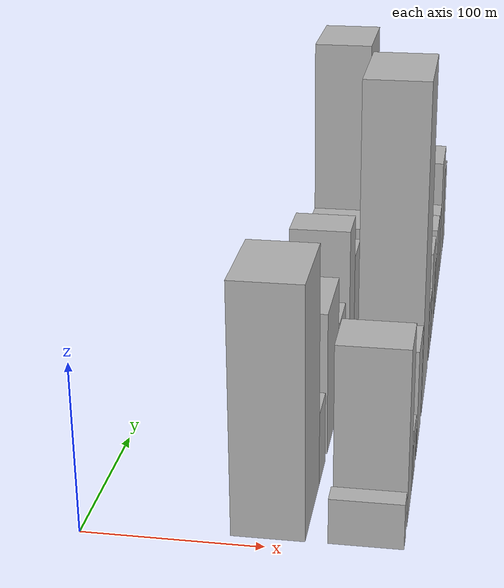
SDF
<sdf version="1.6">
 <world name="default">
  <model name="building_12">
   <static>1</static>
   <pose>100.0000 35.7936 0 0.000000 0.000000 0.000000</pose>
   <link name="link">
    <pose>0 0 73.50 0 0 0</pose>
    <collision name="collision"><geometry><box><size>40.0000 56.1301 147.0000</size></box></geometry></collision>
    <visual name="visual">
     <cast_shadows>0</cast_shadows>
     <geometry><box><size>40.0000 56.1301 147.0000</size></box></geometry>
     <material>
      <script>
       <uri>model://HANNAS_wall/materials/scripts</uri>
       <uri>model://HANNAS_wall/materials/textures</uri>
       <name>vrc/HANNAS_wall</name>
      </script>
     </material>
    </visual>
   </link>
  </model>
  <model name="building_13">
   <static>1</static>
   <pose>100.0000 76.7831 0 0.000000 0.000000 0.000000</pose>
   <link name="link">
    <pose>0 0 22.50 0 0 0</pose>
    <collision name="collision"><geometry><box><size>40.0000 25.8488 45.0000</size></box></geometry></collision>
    <visual name="visual">
     <cast_shadows>0</cast_shadows>
     <geometry><box><size>40.0000 25.8488 45.0000</size></box></geometry>
     <material>
      <script>
       <uri>model://HANNAS_wall/materials/scripts</uri>
       <uri>model://HANNAS_wall/materials/textures</uri>
       <name>vrc/HANNAS_wall</name>
      </script>
     </material>
    </visual>
   </link>
  </model>
  <model name="building_14">
   <static>1</static>
   <pose>100.0000 125.6240 0 0.000000 0.000000 0.000000</pose>
   <link name="link">
    <pose>0 0 45.00 0 0 0</pose>
    <collision name="collision"><geometry><box><size>40.0000 53.8330 90.0000</size></box></geometry></collision>
    <visual name="visual">
     <cast_shadows>0</cast_shadows>
     <geometry><box><size>40.0000 53.8330 90.0000</size></box></geometry>
     <material>
      <script>
       <uri>model://HANNAS_wall/materials/scripts</uri>
       <uri>model://HANNAS_wall/materials/textures</uri>
       <name>vrc/HANNAS_wall</name>
      </script>
     </material>
    </visual>
   </link>
  </model>
  <model name="building_15">
   <static>1</static>
   <pose>100.0000 174.1164 0 0.000000 0.000000 0.000000</pose>
   <link name="link">
    <pose>0 0 28.50 0 0 0</pose>
    <collision name="collision"><geometry><box><size>40.0000 31.1519 57.0000</size></box></geometry></collision>
    <visual name="visual">
     <cast_shadows>0</cast_shadows>
     <geometry><box><size>40.0000 31.1519 57.0000</size></box></geometry>
     <material>
      <script>
       <uri>model://HANNAS_wall/materials/scripts</uri>
       <uri>model://HANNAS_wall/materials/textures</uri>
       <name>vrc/HANNAS_wall</name>
      </script>
     </material>
    </visual>
   </link>
  </model>
  <model name="building_16">
   <static>1</static>
   <pose>100.0000 199.3992 0 0.000000 0.000000 0.000000</pose>
   <link name="link">
    <pose>0 0 16.50 0 0 0</pose>
    <collision name="collision"><geometry><box><size>40.0000 19.4137 33.0000</size></box></geometry></collision>
    <visual name="visual">
     <cast_shadows>0</cast_shadows>
     <geometry><box><size>40.0000 19.4137 33.0000</size></box></geometry>
     <material>
      <script>
       <uri>model://HANNAS_wall/materials/scripts</uri>
       <uri>model://HANNAS_wall/materials/textures</uri>
       <name>vrc/HANNAS_wall</name>
      </script>
     </material>
    </visual>
   </link>
  </model>
  <model name="building_17">
   <static>1</static>
   <pose>100.0000 229.4084 0 0.000000 0.000000 0.000000</pose>
   <link name="link">
    <pose>0 0 48.00 0 0 0</pose>
    <collision name="collision"><geometry><box><size>40.0000 30.6047 96.0000</size></box></geometry></collision>
    <visual name="visual">
     <cast_shadows>0</cast_shadows>
     <geometry><box><size>40.0000 30.6047 96.0000</size></box></geometry>
     <material>
      <script>
       <uri>model://HANNAS_wall/materials/scripts</uri>
       <uri>model://HANNAS_wall/materials/textures</uri>
       <name>vrc/HANNAS_wall</name>
      </script>
     </material>
    </visual>
   </link>
  </model>
  <model name="building_18">
   <static>1</static>
   <pose>100.0000 261.8098 0 0.000000 0.000000 0.000000</pose>
   <link name="link">
    <pose>0 0 33.00 0 0 0</pose>
    <collision name="collision"><geometry><box><size>40.0000 34.1980 66.0000</size></box></geometry></collision>
    <visual name="visual">
     <cast_shadows>0</cast_shadows>
     <geometry><box><size>40.0000 34.1980 66.0000</size></box></geometry>
     <material>
      <script>
       <uri>model://HANNAS_wall/materials/scripts</uri>
       <uri>model://HANNAS_wall/materials/textures</uri>
       <name>vrc/HANNAS_wall</name>
      </script>
     </material>
    </visual>
   </link>
  </model>
  <model name="building_19">
   <static>1</static>
   <pose>100.0000 288.6659 0 0.000000 0.000000 0.000000</pose>
   <link name="link">
    <pose>0 0 19.50 0 0 0</pose>
    <collision name="collision"><geometry><box><size>40.0000 19.5142 39.0000</size></box></geometry></collision>
    <visual name="visual">
     <cast_shadows>0</cast_shadows>
     <geometry><box><size>40.0000 19.5142 39.0000</size></box></geometry>
     <material>
      <script>
       <uri>model://HANNAS_wall/materials/scripts</uri>
       <uri>model://HANNAS_wall/materials/textures</uri>
       <name>vrc/HANNAS_wall</name>
      </script>
     </material>
    </visual>
   </link>
  </model>
  <model name="building_20">
   <static>1</static>
   <pose>100.0000 318.1490 0 0.000000 0.000000 0.000000</pose>
   <link name="link">
    <pose>0 0 33.00 0 0 0</pose>
    <collision name="collision"><geometry><box><size>40.0000 39.4521 66.0000</size></box></geometry></collision>
    <visual name="visual">
     <cast_shadows>0</cast_shadows>
     <geometry><box><size>40.0000 39.4521 66.0000</size></box></geometry>
     <material>
      <script>
       <uri>model://HANNAS_wall/materials/scripts</uri>
       <uri>model://HANNAS_wall/materials/textures</uri>
       <name>vrc/HANNAS_wall</name>
      </script>
     </material>
    </visual>
   </link>
  </model>
  <model name="building_21">
   <static>1</static>
   <pose>100.0000 369.6639 0 0.000000 0.000000 0.000000</pose>
   <link name="link">
    <pose>0 0 94.50 0 0 0</pose>
    <collision name="collision"><geometry><box><size>40.0000 63.5777 189.0000</size></box></geometry></collision>
    <visual name="visual">
     <cast_shadows>0</cast_shadows>
     <geometry><box><size>40.0000 63.5777 189.0000</size></box></geometry>
     <material>
      <script>
       <uri>model://HANNAS_wall/materials/scripts</uri>
       <uri>model://HANNAS_wall/materials/textures</uri>
       <name>vrc/HANNAS_wall</name>
      </script>
     </material>
    </visual>
   </link>
  </model>
  <model name="building_22">
   <static>1</static>
   <pose>100.0000 423.1620 0 0.000000 0.000000 0.000000</pose>
   <link name="link">
    <pose>0 0 57.00 0 0 0</pose>
    <collision name="collision"><geometry><box><size>40.0000 43.4184 114.0000</size></box></geometry></collision>
    <visual name="visual">
     <cast_shadows>0</cast_shadows>
     <geometry><box><size>40.0000 43.4184 114.0000</size></box></geometry>
     <material>
      <script>
       <uri>model://HANNAS_wall/materials/scripts</uri>
       <uri>model://HANNAS_wall/materials/textures</uri>
       <name>vrc/HANNAS_wall</name>
      </script>
     </material>
    </visual>
   </link>
  </model>
  <model name="building_34">
   <static>1</static>
   <pose>152.0000 14.1897 0 0.000000 0.000000 0.000000</pose>
   <link name="link">
    <pose>0 0 13.50 0 0 0</pose>
    <collision name="collision"><geometry><box><size>40.0000 12.4485 27.0000</size></box></geometry></collision>
    <visual name="visual">
     <cast_shadows>0</cast_shadows>
     <geometry><box><size>40.0000 12.4485 27.0000</size></box></geometry>
     <material>
      <script>
       <uri>model://HANNAS_wall/materials/scripts</uri>
       <uri>model://HANNAS_wall/materials/textures</uri>
       <name>vrc/HANNAS_wall</name>
      </script>
     </material>
    </visual>
   </link>
  </model>
  <model name="building_35">
   <static>1</static>
   <pose>152.0000 45.8595 0 0.000000 0.000000 0.000000</pose>
   <link name="link">
    <pose>0 0 52.50 0 0 0</pose>
    <collision name="collision"><geometry><box><size>40.0000 32.8911 105.0000</size></box></geometry></collision>
    <visual name="visual">
     <cast_shadows>0</cast_shadows>
     <geometry><box><size>40.0000 32.8911 105.0000</size></box></geometry>
     <material>
      <script>
       <uri>model://HANNAS_wall/materials/scripts</uri>
       <uri>model://HANNAS_wall/materials/textures</uri>
       <name>vrc/HANNAS_wall</name>
      </script>
     </material>
    </visual>
   </link>
  </model>
  <model name="building_36">
   <static>1</static>
   <pose>152.0000 68.2751 0 0.000000 0.000000 0.000000</pose>
   <link name="link">
    <pose>0 0 13.50 0 0 0</pose>
    <collision name="collision"><geometry><box><size>40.0000 11.9401 27.0000</size></box></geometry></collision>
    <visual name="visual">
     <cast_shadows>0</cast_shadows>
     <geometry><box><size>40.0000 11.9401 27.0000</size></box></geometry>
     <material>
      <script>
       <uri>model://HANNAS_wall/materials/scripts</uri>
       <uri>model://HANNAS_wall/materials/textures</uri>
       <name>vrc/HANNAS_wall</name>
      </script>
     </material>
    </visual>
   </link>
  </model>
  <model name="building_37">
   <static>1</static>
   <pose>152.0000 83.9401 0 0.000000 0.000000 0.000000</pose>
   <link name="link">
    <pose>0 0 16.50 0 0 0</pose>
    <collision name="collision"><geometry><box><size>40.0000 19.3898 33.0000</size></box></geometry></collision>
    <visual name="visual">
     <cast_shadows>0</cast_shadows>
     <geometry><box><size>40.0000 19.3898 33.0000</size></box></geometry>
     <material>
      <script>
       <uri>model://HANNAS_wall/materials/scripts</uri>
       <uri>model://HANNAS_wall/materials/textures</uri>
       <name>vrc/HANNAS_wall</name>
      </script>
     </material>
    </visual>
   </link>
  </model>
  <model name="building_38">
   <static>1</static>
   <pose>152.0000 102.7569 0 0.000000 0.000000 0.000000</pose>
   <link name="link">
    <pose>0 0 9.00 0 0 0</pose>
    <collision name="collision"><geometry><box><size>40.0000 8.2438 18.0000</size></box></geometry></collision>
    <visual name="visual">
     <cast_shadows>0</cast_shadows>
     <geometry><box><size>40.0000 8.2438 18.0000</size></box></geometry>
     <material>
      <script>
       <uri>model://HANNAS_wall/materials/scripts</uri>
       <uri>model://HANNAS_wall/materials/textures</uri>
       <name>vrc/HANNAS_wall</name>
      </script>
     </material>
    </visual>
   </link>
  </model>
  <model name="building_39">
   <static>1</static>
   <pose>152.0000 125.0118 0 0.000000 0.000000 0.000000</pose>
   <link name="link">
    <pose>0 0 33.00 0 0 0</pose>
    <collision name="collision"><geometry><box><size>40.0000 36.2661 66.0000</size></box></geometry></collision>
    <visual name="visual">
     <cast_shadows>0</cast_shadows>
     <geometry><box><size>40.0000 36.2661 66.0000</size></box></geometry>
     <material>
      <script>
       <uri>model://HANNAS_wall/materials/scripts</uri>
       <uri>model://HANNAS_wall/materials/textures</uri>
       <name>vrc/HANNAS_wall</name>
      </script>
     </material>
    </visual>
   </link>
  </model>
  <model name="building_40">
   <static>1</static>
   <pose>152.0000 186.0160 0 0.000000 0.000000 0.000000</pose>
   <link name="link">
    <pose>0 0 106.50 0 0 0</pose>
    <collision name="collision"><geometry><box><size>40.0000 67.7422 213.0000</size></box></geometry></collision>
    <visual name="visual">
     <cast_shadows>0</cast_shadows>
     <geometry><box><size>40.0000 67.7422 213.0000</size></box></geometry>
     <material>
      <script>
       <uri>model://HANNAS_wall/materials/scripts</uri>
       <uri>model://HANNAS_wall/materials/textures</uri>
       <name>vrc/HANNAS_wall</name>
      </script>
     </material>
    </visual>
   </link>
  </model>
  <model name="building_41">
   <static>1</static>
   <pose>152.0000 242.3650 0 0.000000 0.000000 0.000000</pose>
   <link name="link">
    <pose>0 0 21.00 0 0 0</pose>
    <collision name="collision"><geometry><box><size>40.0000 24.9558 42.0000</size></box></geometry></collision>
    <visual name="visual">
     <cast_shadows>0</cast_shadows>
     <geometry><box><size>40.0000 24.9558 42.0000</size></box></geometry>
     <material>
      <script>
       <uri>model://HANNAS_wall/materials/scripts</uri>
       <uri>model://HANNAS_wall/materials/textures</uri>
       <name>vrc/HANNAS_wall</name>
      </script>
     </material>
    </visual>
   </link>
  </model>
  <model name="building_42">
   <static>1</static>
   <pose>152.0000 275.0133 0 0.000000 0.000000 0.000000</pose>
   <link name="link">
    <pose>0 0 33.00 0 0 0</pose>
    <collision name="collision"><geometry><box><size>40.0000 34.3407 66.0000</size></box></geometry></collision>
    <visual name="visual">
     <cast_shadows>0</cast_shadows>
     <geometry><box><size>40.0000 34.3407 66.0000</size></box></geometry>
     <material>
      <script>
       <uri>model://HANNAS_wall/materials/scripts</uri>
       <uri>model://HANNAS_wall/materials/textures</uri>
       <name>vrc/HANNAS_wall</name>
      </script>
     </material>
    </visual>
   </link>
  </model>
  <model name="building_43">
   <static>1</static>
   <pose>152.0000 308.6903 0 0.000000 0.000000 0.000000</pose>
   <link name="link">
    <pose>0 0 21.00 0 0 0</pose>
    <collision name="collision"><geometry><box><size>40.0000 21.0133 42.0000</size></box></geometry></collision>
    <visual name="visual">
     <cast_shadows>0</cast_shadows>
     <geometry><box><size>40.0000 21.0133 42.0000</size></box></geometry>
     <material>
      <script>
       <uri>model://HANNAS_wall/materials/scripts</uri>
       <uri>model://HANNAS_wall/materials/textures</uri>
       <name>vrc/HANNAS_wall</name>
      </script>
     </material>
    </visual>
   </link>
  </model>
  <model name="building_44">
   <static>1</static>
   <pose>152.0000 335.0728 0 0.000000 0.000000 0.000000</pose>
   <link name="link">
    <pose>0 0 30.00 0 0 0</pose>
    <collision name="collision"><geometry><box><size>40.0000 31.7519 60.0000</size></box></geometry></collision>
    <visual name="visual">
     <cast_shadows>0</cast_shadows>
     <geometry><box><size>40.0000 31.7519 60.0000</size></box></geometry>
     <material>
      <script>
       <uri>model://HANNAS_wall/materials/scripts</uri>
       <uri>model://HANNAS_wall/materials/textures</uri>
       <name>vrc/HANNAS_wall</name>
      </script>
     </material>
    </visual>
   </link>
  </model>
  <model name="building_45">
   <static>1</static>
   <pose>152.0000 366.7379 0 0.000000 0.000000 0.000000</pose>
   <link name="link">
    <pose>0 0 28.50 0 0 0</pose>
    <collision name="collision"><geometry><box><size>40.0000 31.5783 57.0000</size></box></geometry></collision>
    <visual name="visual">
     <cast_shadows>0</cast_shadows>
     <geometry><box><size>40.0000 31.5783 57.0000</size></box></geometry>
     <material>
      <script>
       <uri>model://HANNAS_wall/materials/scripts</uri>
       <uri>model://HANNAS_wall/materials/textures</uri>
       <name>vrc/HANNAS_wall</name>
      </script>
     </material>
    </visual>
   </link>
  </model>
  <model name="building_46">
   <static>1</static>
   <pose>152.0000 405.5123 0 0.000000 0.000000 0.000000</pose>
   <link name="link">
    <pose>0 0 45.00 0 0 0</pose>
    <collision name="collision"><geometry><box><size>40.0000 45.9705 90.0000</size></box></geometry></collision>
    <visual name="visual">
     <cast_shadows>0</cast_shadows>
     <geometry><box><size>40.0000 45.9705 90.0000</size></box></geometry>
     <material>
      <script>
       <uri>model://HANNAS_wall/materials/scripts</uri>
       <uri>model://HANNAS_wall/materials/textures</uri>
       <name>vrc/HANNAS_wall</name>
      </script>
     </material>
    </visual>
   </link>
  </model>
  <model name="building_47">
   <static>1</static>
   <pose>152.0000 447.1226 0 0.000000 0.000000 0.000000</pose>
   <link name="link">
    <pose>0 0 33.00 0 0 0</pose>
    <collision name="collision"><geometry><box><size>40.0000 37.2501 66.0000</size></box></geometry></collision>
    <visual name="visual">
     <cast_shadows>0</cast_shadows>
     <geometry><box><size>40.0000 37.2501 66.0000</size></box></geometry>
     <material>
      <script>
       <uri>model://HANNAS_wall/materials/scripts</uri>
       <uri>model://HANNAS_wall/materials/textures</uri>
       <name>vrc/HANNAS_wall</name>
      </script>
     </material>
    </visual>
   </link>
  </model>
 </world>
</sdf>
